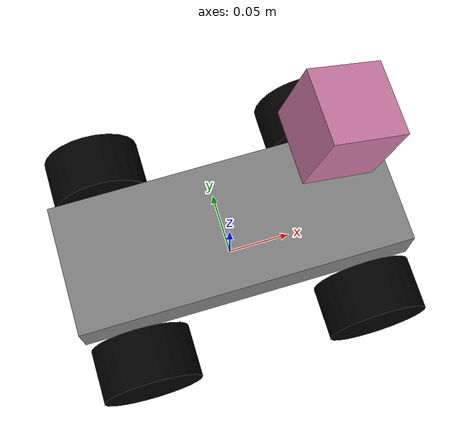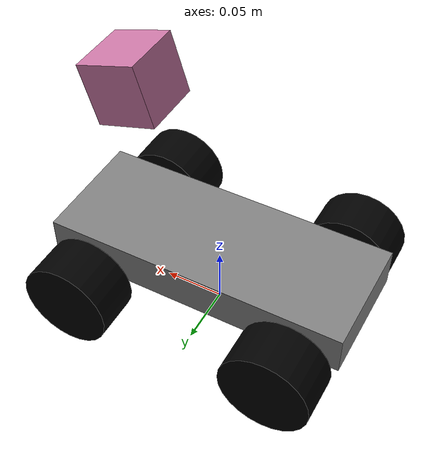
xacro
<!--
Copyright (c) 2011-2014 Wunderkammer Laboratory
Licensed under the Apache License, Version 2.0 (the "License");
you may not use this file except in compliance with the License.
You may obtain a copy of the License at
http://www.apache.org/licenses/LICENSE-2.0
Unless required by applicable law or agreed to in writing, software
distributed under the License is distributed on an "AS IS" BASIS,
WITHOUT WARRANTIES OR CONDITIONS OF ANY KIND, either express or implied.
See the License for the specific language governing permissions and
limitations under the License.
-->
<?xml version="1.0"?>

<robot name="robocar" xmlns:xacro="http://www.ros.org/wiki/xacro">

<!-- MACROS AND PROPERTIES -->

  <!-- Degree-to-radian conversions -->
  <xacro:property name="degrees_45" value="0.785398163"/>
  <xacro:property name="degrees_90" value="1.57079633"/>

  <!-- chassis_length is measured along the x axis, chassis_width
       along the y axis, and chassis_height along the z axis. -->
  <xacro:property name="chassis_length" value="0.255"/>
  <xacro:property name="chassis_width" value="0.1"/>
  <xacro:property name="chassis_height" value="0.034"/>
  <xacro:property name="chassis_mass" value="1.079"/>

  <!-- hub_dia and tire_dia are the diameters of the hub and tire,
       respectively. -->
  <xacro:property name="hub_dia" value="0.01"/>
  <xacro:property name="tire_dia" value="0.075"/>
  <xacro:property name="tire_width" value="0.04"/>

  <xacro:property name="wheel_mass" value="0.29"/>

  <xacro:property name="wheelbase" value="0.175"/>
  <xacro:property name="hex_hub_dist" value="0.145"/>
  <xacro:property name="axle_length" value="0.055"/>
  <xacro:property name="wheel_travel" value="0.04"/>
  <xacro:property name="shock_z_offset" value="0.0655"/>

  <xacro:property name="hex_hub_depth" value="${tire_width / 2 - axle_length}"/>

  <xacro:property name="shock_eff_limit" value="12.5106"/>
  <xacro:property name="shock_vel_limit" value="1000"/>

  <xacro:property name="axle_eff_limit" value="5.12766"/>
  <xacro:property name="axle_vel_limit" value="244.8696"/>

  <!-- These constants are used to simulate a servo operated at
       6 V. servo_stall_torque is measured in N m. servo_no_load_speed is
       measured in rad/s. -->
  <xacro:property name="servo_stall_torque" value="0.5649"/>
  <xacro:property name="servo_no_load_speed" value="4.553"/>

  <material name="chassis_mat">
    <color rgba="0.5 0.5 0.5 1"/>
  </material>
  <material name="tire_mat">
    <color rgba="0 0 0 1"/>
  </material>

  <!-- Null inertial element. This is needed to make the model work with
       Gazebo. -->
  <xacro:macro name="null_inertial">
    <inertial>
      <mass value="0.001"/>
      <inertia ixx="0.001" ixy="0" ixz="0" iyy="0.001" iyz="0" izz="0.001"/>
    </inertial>
  </xacro:macro>

  <!-- Inertia of a solid cuboid. Width is measured along the x axis, depth
       along the y axis, and height along the z axis. -->
  <xacro:macro name="solid_cuboid_inertial"
               params="width depth height mass *origin">
    <inertial>
      <xacro:insert_block name="origin"/>
      <mass value="${mass}"/>
      <inertia ixx="${mass * (depth * depth + height * height) / 12}"
               ixy="0" ixz="0"
               iyy="${mass * (width * width + height * height) / 12}"
               iyz="0"
               izz="${mass * (width * width + depth * depth) / 12}"/>
    </inertial>
  </xacro:macro>

  <xacro:macro name="thick_walled_tube_inertial"
               params="inner_rad outer_rad height mass">
    <inertial>
      <mass value="${mass}"/>
      <inertia ixx="${(1 / 12) * mass * (3 * (inner_rad * inner_rad +
                    outer_rad * outer_rad) + height * height)}"
               ixy="0" ixz="0"
               iyy="${(1 / 12) * mass * (3 * (inner_rad * inner_rad +
                    outer_rad * outer_rad) + height * height)}"
               iyz="0"
               izz="${mass * (inner_rad * inner_rad +
                    outer_rad * outer_rad) / 2}"/>
    </inertial>
  </xacro:macro>

  <!-- Shock absorber -->
  <xacro:macro name="shock"
               params="lr_prefix fr_prefix lr_reflect fr_reflect child">
    <joint name="${lr_prefix}_${fr_prefix}_shock" type="prismatic">
      <parent link="chassis"/>
      <child link="${child}"/>

      <origin xyz="${fr_reflect * wheelbase / 2}
                   ${lr_reflect * ((hex_hub_dist / 2) - axle_length)}
                   ${-(chassis_height) / 2}"/>
      <axis xyz="0 0 -1"/>
      <limit lower="${-wheel_travel / 2}" upper="${wheel_travel / 2}"
             effort="${shock_eff_limit}" velocity="${shock_vel_limit}"/>
    </joint>
    <transmission name="${lr_prefix}_${fr_prefix}_shock_trans">
      <type>transmission_interface/SimpleTransmission</type>
      <joint name="${lr_prefix}_${fr_prefix}_shock">
        <hardwareInterface>hardware_interface/EffortJointInterface</hardwareInterface>
      </joint>
      <actuator name="${lr_prefix}_${fr_prefix}_shock_act">
        <hardwareInterface>hardware_interface/EffortJointInterface</hardwareInterface>
        <mechanicalReduction>1</mechanicalReduction>
      </actuator>
    </transmission>
  </xacro:macro>

  <!-- The "wheel" macro defines an axle carrier, axle, and wheel. -->
  <xacro:macro name="wheel" params="lr_prefix fr_prefix lr_reflect">
    <link name="${lr_prefix}_${fr_prefix}_axle_carrier">
      <xacro:null_inertial/>
    </link>

    <!-- The left and right axles have the same axis so that identical
         rotation values cause the wheels to rotate in the same direction. -->
    <joint name="${lr_prefix}_${fr_prefix}_axle" type="continuous">
      <parent link="${lr_prefix}_${fr_prefix}_axle_carrier"/>
      <child link="${lr_prefix}_${fr_prefix}_wheel"/>
      <origin rpy="${degrees_90} 0 0"/>
      <axis xyz="0 0 -1"/>
      <limit effort="${axle_eff_limit}" velocity="${axle_vel_limit}"/>
    </joint>
    <transmission name="${lr_prefix}_${fr_prefix}_axle_trans">
      <type>transmission_interface/SimpleTransmission</type>
      <joint name="${lr_prefix}_${fr_prefix}_axle">
        <hardwareInterface>hardware_interface/EffortJointInterface</hardwareInterface>
      </joint>
      <actuator name="${lr_prefix}_${fr_prefix}_axle_act">
        <hardwareInterface>hardware_interface/EffortJointInterface</hardwareInterface>
        <mechanicalReduction>1</mechanicalReduction>
      </actuator>
    </transmission>

    <link name="${lr_prefix}_${fr_prefix}_wheel">
      <visual>
        <origin xyz="0
                     0
                     ${lr_reflect * (axle_length + tire_width/2 + 0.02)}"/>
        <geometry>
          <cylinder radius="${tire_dia / 2}" length="${tire_width}"/>
        </geometry>
        <material name="tire_mat"/>
      </visual>

      <collision>
        <origin xyz="0
                     0
                     ${lr_reflect * (axle_length + tire_width/2 + 0.02)}"/>
        <geometry>
          <cylinder radius="${tire_dia / 2}" length="${tire_width}"/>
        </geometry>
      </collision>

      <xacro:thick_walled_tube_inertial
          inner_rad="${hub_dia / 2}" outer_rad="${tire_dia / 2}"
          height="${tire_width}" mass="${wheel_mass}"/>
    </link>

    <gazebo reference="${lr_prefix}_${fr_prefix}_wheel">
      <material>Gazebo/Wood</material>
    </gazebo>
  </xacro:macro>

  <!-- Front wheel -->
  <xacro:macro name="front_wheel"
               params="lr_prefix fr_prefix lr_reflect fr_reflect">
    <xacro:shock lr_prefix="${lr_prefix}" fr_prefix="${fr_prefix}"
                 lr_reflect="${lr_reflect}" fr_reflect="${fr_reflect}"
                 child="${lr_prefix}_steering_link"/>

    <link name="${lr_prefix}_steering_link">
      <xacro:null_inertial/>
    </link>

    <joint name="${lr_prefix}_steering_joint" type="fixed">
      <parent link="${lr_prefix}_steering_link"/>
      <child link="${lr_prefix}_${fr_prefix}_axle_carrier"/>
      <axis xyz="0 0 1"/>
      <limit lower="${-degrees_45}" upper="${degrees_45}"
             effort="${servo_stall_torque}" velocity="${servo_no_load_speed}"/>
    </joint>

    <transmission name="${lr_prefix}_steering_trans">
      <type>transmission_interface/SimpleTransmission</type>
      <joint name="${lr_prefix}_steering_joint">
        <hardwareInterface>hardware_interface/EffortJointInterface</hardwareInterface>
      </joint>
      <actuator name="${lr_prefix}_steering_act">
        <hardwareInterface>hardware_interface/EffortJointInterface</hardwareInterface>
        <mechanicalReduction>1</mechanicalReduction>
      </actuator>
    </transmission>

    <xacro:wheel lr_prefix="${lr_prefix}" fr_prefix="${fr_prefix}"
                 lr_reflect="${lr_reflect}"/>
  </xacro:macro>

  <!-- Rear wheel -->
  <xacro:macro name="rear_wheel"
               params="lr_prefix fr_prefix lr_reflect fr_reflect">
    <xacro:shock lr_prefix="${lr_prefix}" fr_prefix="${fr_prefix}"
                 lr_reflect="${lr_reflect}" fr_reflect="${fr_reflect}"
                 child="${lr_prefix}_${fr_prefix}_axle_carrier"/>
    <xacro:wheel lr_prefix="${lr_prefix}" fr_prefix="${fr_prefix}"
                 lr_reflect="${lr_reflect}"/>
  </xacro:macro>

<!-- END OF MACROS AND PROPERTIES -->

<!-- CAR MODEL -->

  <!-- projection of base_link to the ground -->
  <link name="base_footprint">
  </link>
  <joint type="fixed" name="base_to_bottom_joint">
    <origin xyz="0 0 ${(chassis_height + tire_dia) / 2}" rpy="0 0 0"/>
    <child link="base_link"/>
    <parent link="base_footprint"/>
  </joint>

  <!-- base_link must have geometry so that its axes can be displayed in
       rviz. -->
  <link name="base_link">
    <visual>
      <geometry>
        <box size="0.01 0.01 0.01"/>
      </geometry>
      <material name="chassis_mat"/>
    </visual>
  </link>
  <gazebo reference="base_link">
    <material>Gazebo/Orange</material>
  </gazebo>

  <!-- Chassis -->
  <link name="chassis">
    <visual>
      <origin xyz="0 0 0"/>
      <geometry>
        <box size="${chassis_length} ${chassis_width} ${chassis_height}"/>
      </geometry>
      <material name="chassis_mat"/>
    </visual>

    <collision>
      <origin xyz="0 0 0"/>
      <geometry>
        <box size="${chassis_length} ${chassis_width} ${chassis_height}"/>
      </geometry>
    </collision>

    <xacro:solid_cuboid_inertial
        width="${chassis_length}" depth="${chassis_width}"
        height="${chassis_height}" mass="${chassis_mass}">
      <origin xyz="0 0 0"/>
    </xacro:solid_cuboid_inertial>
  </link>
  <gazebo reference="chassis">
    <material>Gazebo/Blue</material>
  </gazebo>

  <joint name="base_link_to_chassis" type="fixed">
    <parent link="base_link"/>
    <child link="chassis"/>
  </joint>

  <xacro:front_wheel lr_prefix="left" fr_prefix="front" lr_reflect="1" fr_reflect="1"/>
  <xacro:front_wheel lr_prefix="right" fr_prefix="front" lr_reflect="-1" fr_reflect="1"/>
  <xacro:rear_wheel lr_prefix="left" fr_prefix="rear" lr_reflect="1" fr_reflect="-1"/>
  <xacro:rear_wheel lr_prefix="right" fr_prefix="rear" lr_reflect="-1" fr_reflect="-1"/>

  <!-- CAMERA -->
    <link name="sensors">
    </link>
    <joint name="sensor_joint" type="fixed">
      <parent link="chassis"/>
      <child link="sensors"/>
    </joint>

    <link name="front_camera_sensor">
      <inertial>
        <mass value="0.001"/>
        <origin xyz="0 0 0" rpy=" 0 0 0"/>
        <inertia
            ixx="1e-6" ixy="0" ixz="0"
            iyy="1e-6" iyz="0"
            izz="1e-6"
        />
      </inertial>

      <collision name='camera_collision'>
        <origin xyz="0 0 0" rpy=" 0 0 0"/>
        <geometry>
          <box size="0.05 0.05 0.05"/>
        </geometry>
      </collision>

      <visual name='camera_visual'>
        <origin xyz="0 0 0" rpy="0 0 0"/>
        <geometry>
          <box size="0.05 0.05 0.05"/>
        </geometry>
      </visual>
    </link>

    <joint name="camera_joint" type="fixed">
        <origin xyz="0.07 0 0.148" rpy="0 0.296706 0"/>
        <parent link="sensors"/>
        <child link="front_camera_sensor"/>
    </joint>

  <!-- generate an optical frame
      http://www.ros.org/reps/rep-0103.html#suffix-frames
      so that ros and opencv can operate on the camera frame correctly
      -->
    <link name="camera_link_optical">
    </link>
    <joint name="camera_optical_joint" type="fixed">
        <origin xyz="0 0 0" rpy="${-degrees_90} 0 ${-degrees_90}"/>
        <parent link="front_camera_sensor"/>
        <child link="camera_link_optical"/>
    </joint>

</robot>

<!-- IGNORE GASEBO PARAMS -->
